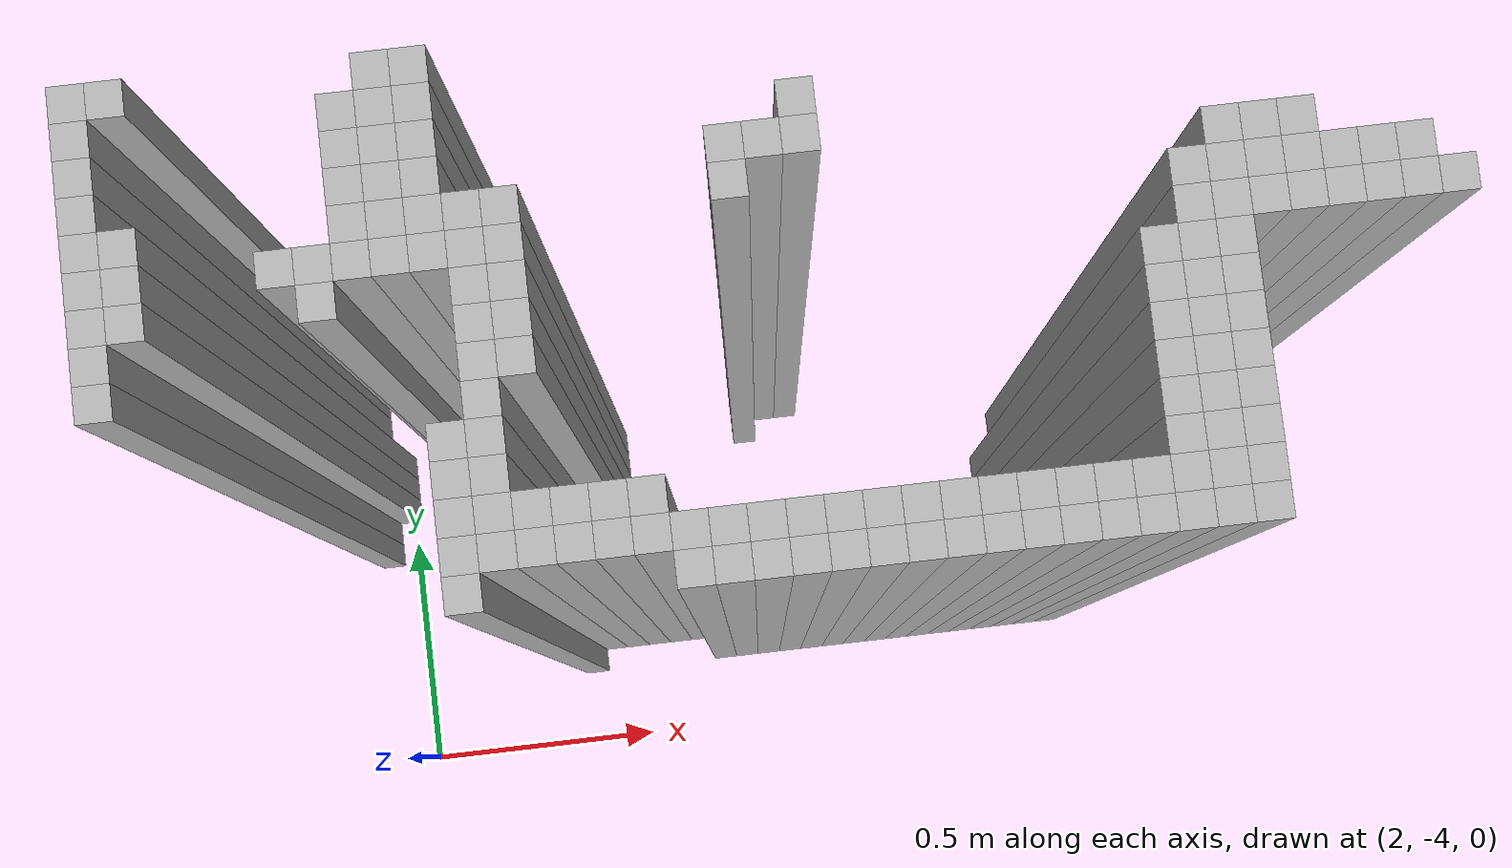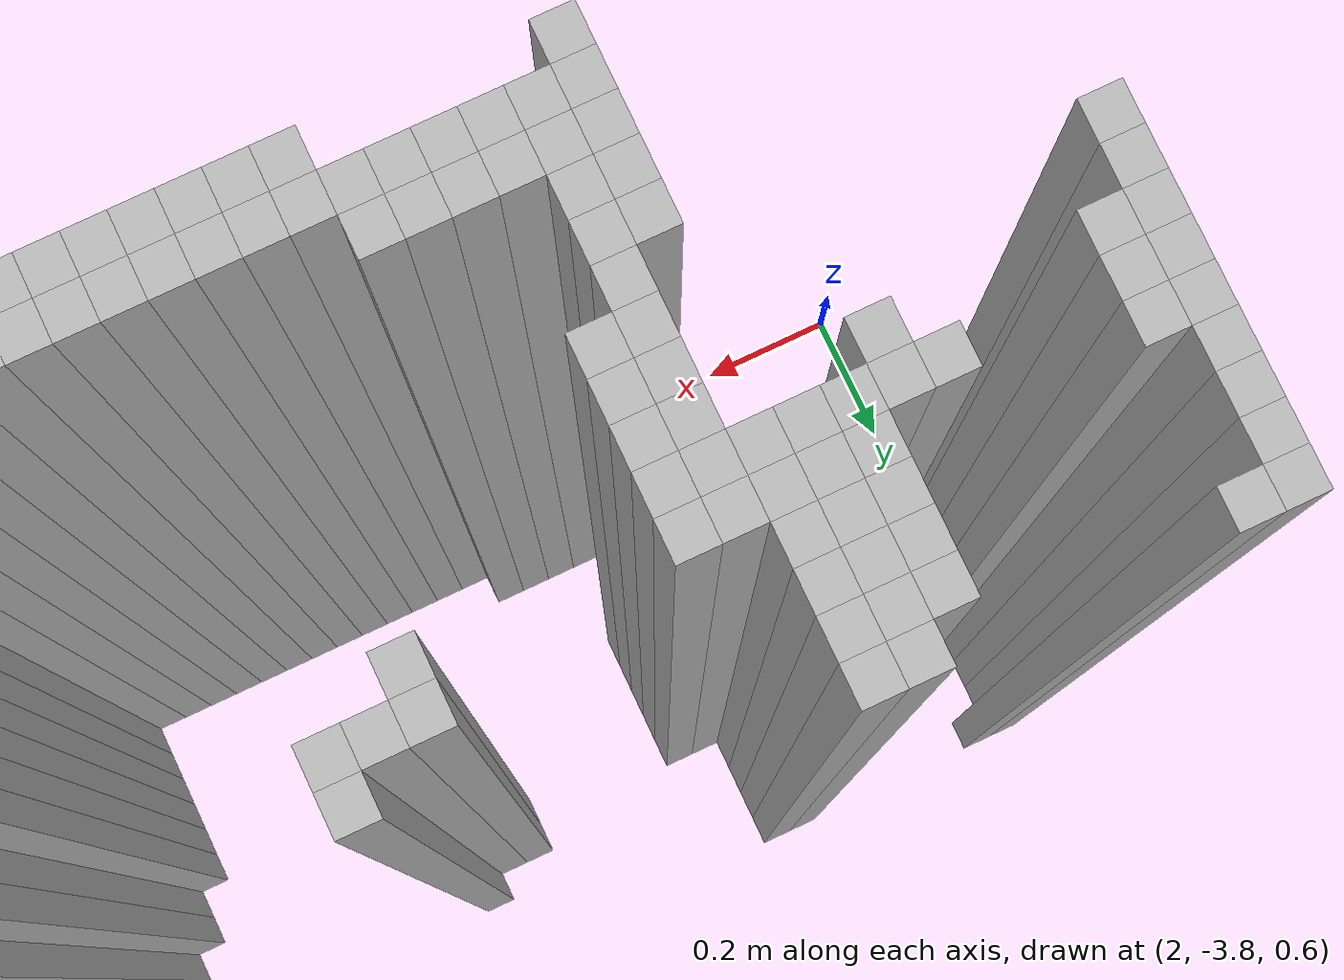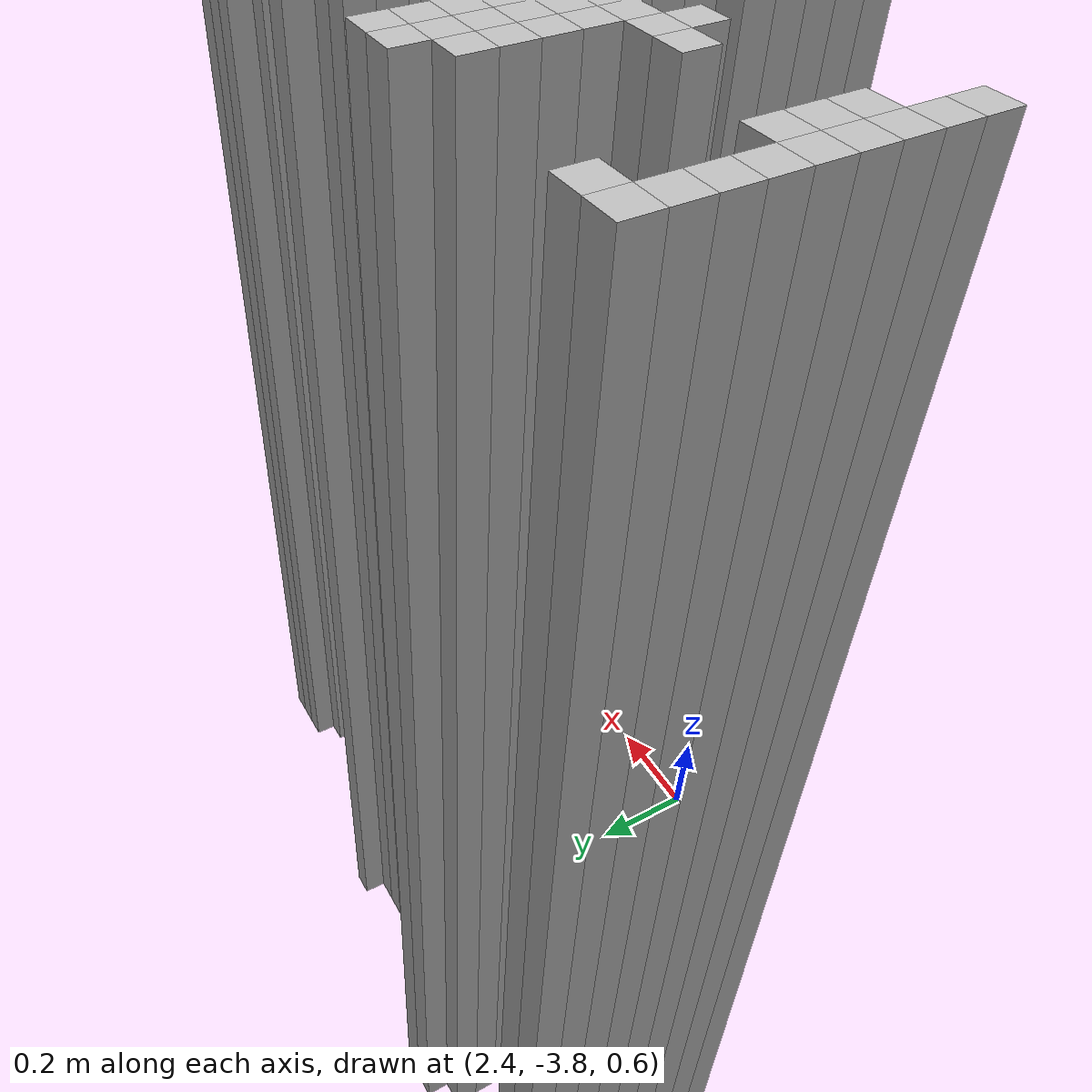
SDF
<sdf version="1.9">
 <world name="map_world">
  <model name="wall_262_216">
   <static>true</static>
   <pose>1.939 -3.120 1.250 0 0 0</pose>
   <link name="link">
    <collision name="collision"><geometry><box><size>0.050 0.050 2.500</size></box></geometry></collision>
    <visual name="visual"><geometry><box><size>0.050 0.050 2.500</size></box></geometry></visual>
   </link>
  </model>
  <model name="wall_263_216">
   <static>true</static>
   <pose>1.989 -3.120 1.250 0 0 0</pose>
   <link name="link">
    <collision name="collision"><geometry><box><size>0.050 0.050 2.500</size></box></geometry></collision>
    <visual name="visual"><geometry><box><size>0.050 0.050 2.500</size></box></geometry></visual>
   </link>
  </model>
  <model name="wall_270_216">
   <static>true</static>
   <pose>2.339 -3.120 1.250 0 0 0</pose>
   <link name="link">
    <collision name="collision"><geometry><box><size>0.050 0.050 2.500</size></box></geometry></collision>
    <visual name="visual"><geometry><box><size>0.050 0.050 2.500</size></box></geometry></visual>
   </link>
  </model>
  <model name="wall_271_216">
   <static>true</static>
   <pose>2.389 -3.120 1.250 0 0 0</pose>
   <link name="link">
    <collision name="collision"><geometry><box><size>0.050 0.050 2.500</size></box></geometry></collision>
    <visual name="visual"><geometry><box><size>0.050 0.050 2.500</size></box></geometry></visual>
   </link>
  </model>
  <model name="wall_262_217">
   <static>true</static>
   <pose>1.939 -3.170 1.250 0 0 0</pose>
   <link name="link">
    <collision name="collision"><geometry><box><size>0.050 0.050 2.500</size></box></geometry></collision>
    <visual name="visual"><geometry><box><size>0.050 0.050 2.500</size></box></geometry></visual>
   </link>
  </model>
  <model name="wall_269_217">
   <static>true</static>
   <pose>2.289 -3.170 1.250 0 0 0</pose>
   <link name="link">
    <collision name="collision"><geometry><box><size>0.050 0.050 2.500</size></box></geometry></collision>
    <visual name="visual"><geometry><box><size>0.050 0.050 2.500</size></box></geometry></visual>
   </link>
  </model>
  <model name="wall_270_217">
   <static>true</static>
   <pose>2.339 -3.170 1.250 0 0 0</pose>
   <link name="link">
    <collision name="collision"><geometry><box><size>0.050 0.050 2.500</size></box></geometry></collision>
    <visual name="visual"><geometry><box><size>0.050 0.050 2.500</size></box></geometry></visual>
   </link>
  </model>
  <model name="wall_271_217">
   <static>true</static>
   <pose>2.389 -3.170 1.250 0 0 0</pose>
   <link name="link">
    <collision name="collision"><geometry><box><size>0.050 0.050 2.500</size></box></geometry></collision>
    <visual name="visual"><geometry><box><size>0.050 0.050 2.500</size></box></geometry></visual>
   </link>
  </model>
  <model name="wall_262_218">
   <static>true</static>
   <pose>1.939 -3.220 1.250 0 0 0</pose>
   <link name="link">
    <collision name="collision"><geometry><box><size>0.050 0.050 2.500</size></box></geometry></collision>
    <visual name="visual"><geometry><box><size>0.050 0.050 2.500</size></box></geometry></visual>
   </link>
  </model>
  <model name="wall_269_218">
   <static>true</static>
   <pose>2.289 -3.220 1.250 0 0 0</pose>
   <link name="link">
    <collision name="collision"><geometry><box><size>0.050 0.050 2.500</size></box></geometry></collision>
    <visual name="visual"><geometry><box><size>0.050 0.050 2.500</size></box></geometry></visual>
   </link>
  </model>
  <model name="wall_270_218">
   <static>true</static>
   <pose>2.339 -3.220 1.250 0 0 0</pose>
   <link name="link">
    <collision name="collision"><geometry><box><size>0.050 0.050 2.500</size></box></geometry></collision>
    <visual name="visual"><geometry><box><size>0.050 0.050 2.500</size></box></geometry></visual>
   </link>
  </model>
  <model name="wall_271_218">
   <static>true</static>
   <pose>2.389 -3.220 1.250 0 0 0</pose>
   <link name="link">
    <collision name="collision"><geometry><box><size>0.050 0.050 2.500</size></box></geometry></collision>
    <visual name="visual"><geometry><box><size>0.050 0.050 2.500</size></box></geometry></visual>
   </link>
  </model>
  <model name="wall_281_218">
   <static>true</static>
   <pose>2.889 -3.220 1.250 0 0 0</pose>
   <link name="link">
    <collision name="collision"><geometry><box><size>0.050 0.050 2.500</size></box></geometry></collision>
    <visual name="visual"><geometry><box><size>0.050 0.050 2.500</size></box></geometry></visual>
   </link>
  </model>
  <model name="wall_262_219">
   <static>true</static>
   <pose>1.939 -3.270 1.250 0 0 0</pose>
   <link name="link">
    <collision name="collision"><geometry><box><size>0.050 0.050 2.500</size></box></geometry></collision>
    <visual name="visual"><geometry><box><size>0.050 0.050 2.500</size></box></geometry></visual>
   </link>
  </model>
  <model name="wall_269_219">
   <static>true</static>
   <pose>2.289 -3.270 1.250 0 0 0</pose>
   <link name="link">
    <collision name="collision"><geometry><box><size>0.050 0.050 2.500</size></box></geometry></collision>
    <visual name="visual"><geometry><box><size>0.050 0.050 2.500</size></box></geometry></visual>
   </link>
  </model>
  <model name="wall_270_219">
   <static>true</static>
   <pose>2.339 -3.270 1.250 0 0 0</pose>
   <link name="link">
    <collision name="collision"><geometry><box><size>0.050 0.050 2.500</size></box></geometry></collision>
    <visual name="visual"><geometry><box><size>0.050 0.050 2.500</size></box></geometry></visual>
   </link>
  </model>
  <model name="wall_271_219">
   <static>true</static>
   <pose>2.389 -3.270 1.250 0 0 0</pose>
   <link name="link">
    <collision name="collision"><geometry><box><size>0.050 0.050 2.500</size></box></geometry></collision>
    <visual name="visual"><geometry><box><size>0.050 0.050 2.500</size></box></geometry></visual>
   </link>
  </model>
  <model name="wall_279_219">
   <static>true</static>
   <pose>2.789 -3.270 1.250 0 0 0</pose>
   <link name="link">
    <collision name="collision"><geometry><box><size>0.050 0.050 2.500</size></box></geometry></collision>
    <visual name="visual"><geometry><box><size>0.050 0.050 2.500</size></box></geometry></visual>
   </link>
  </model>
  <model name="wall_280_219">
   <static>true</static>
   <pose>2.839 -3.270 1.250 0 0 0</pose>
   <link name="link">
    <collision name="collision"><geometry><box><size>0.050 0.050 2.500</size></box></geometry></collision>
    <visual name="visual"><geometry><box><size>0.050 0.050 2.500</size></box></geometry></visual>
   </link>
  </model>
  <model name="wall_281_219">
   <static>true</static>
   <pose>2.889 -3.270 1.250 0 0 0</pose>
   <link name="link">
    <collision name="collision"><geometry><box><size>0.050 0.050 2.500</size></box></geometry></collision>
    <visual name="visual"><geometry><box><size>0.050 0.050 2.500</size></box></geometry></visual>
   </link>
  </model>
  <model name="wall_262_220">
   <static>true</static>
   <pose>1.939 -3.320 1.250 0 0 0</pose>
   <link name="link">
    <collision name="collision"><geometry><box><size>0.050 0.050 2.500</size></box></geometry></collision>
    <visual name="visual"><geometry><box><size>0.050 0.050 2.500</size></box></geometry></visual>
   </link>
  </model>
  <model name="wall_263_220">
   <static>true</static>
   <pose>1.989 -3.320 1.250 0 0 0</pose>
   <link name="link">
    <collision name="collision"><geometry><box><size>0.050 0.050 2.500</size></box></geometry></collision>
    <visual name="visual"><geometry><box><size>0.050 0.050 2.500</size></box></geometry></visual>
   </link>
  </model>
  <model name="wall_269_220">
   <static>true</static>
   <pose>2.289 -3.320 1.250 0 0 0</pose>
   <link name="link">
    <collision name="collision"><geometry><box><size>0.050 0.050 2.500</size></box></geometry></collision>
    <visual name="visual"><geometry><box><size>0.050 0.050 2.500</size></box></geometry></visual>
   </link>
  </model>
  <model name="wall_270_220">
   <static>true</static>
   <pose>2.339 -3.320 1.250 0 0 0</pose>
   <link name="link">
    <collision name="collision"><geometry><box><size>0.050 0.050 2.500</size></box></geometry></collision>
    <visual name="visual"><geometry><box><size>0.050 0.050 2.500</size></box></geometry></visual>
   </link>
  </model>
  <model name="wall_271_220">
   <static>true</static>
   <pose>2.389 -3.320 1.250 0 0 0</pose>
   <link name="link">
    <collision name="collision"><geometry><box><size>0.050 0.050 2.500</size></box></geometry></collision>
    <visual name="visual"><geometry><box><size>0.050 0.050 2.500</size></box></geometry></visual>
   </link>
  </model>
  <model name="wall_272_220">
   <static>true</static>
   <pose>2.439 -3.320 1.250 0 0 0</pose>
   <link name="link">
    <collision name="collision"><geometry><box><size>0.050 0.050 2.500</size></box></geometry></collision>
    <visual name="visual"><geometry><box><size>0.050 0.050 2.500</size></box></geometry></visual>
   </link>
  </model>
  <model name="wall_273_220">
   <static>true</static>
   <pose>2.489 -3.320 1.250 0 0 0</pose>
   <link name="link">
    <collision name="collision"><geometry><box><size>0.050 0.050 2.500</size></box></geometry></collision>
    <visual name="visual"><geometry><box><size>0.050 0.050 2.500</size></box></geometry></visual>
   </link>
  </model>
  <model name="wall_279_220">
   <static>true</static>
   <pose>2.789 -3.320 1.250 0 0 0</pose>
   <link name="link">
    <collision name="collision"><geometry><box><size>0.050 0.050 2.500</size></box></geometry></collision>
    <visual name="visual"><geometry><box><size>0.050 0.050 2.500</size></box></geometry></visual>
   </link>
  </model>
  <model name="wall_292_220">
   <static>true</static>
   <pose>3.439 -3.320 1.250 0 0 0</pose>
   <link name="link">
    <collision name="collision"><geometry><box><size>0.050 0.050 2.500</size></box></geometry></collision>
    <visual name="visual"><geometry><box><size>0.050 0.050 2.500</size></box></geometry></visual>
   </link>
  </model>
  <model name="wall_293_220">
   <static>true</static>
   <pose>3.489 -3.320 1.250 0 0 0</pose>
   <link name="link">
    <collision name="collision"><geometry><box><size>0.050 0.050 2.500</size></box></geometry></collision>
    <visual name="visual"><geometry><box><size>0.050 0.050 2.500</size></box></geometry></visual>
   </link>
  </model>
  <model name="wall_294_220">
   <static>true</static>
   <pose>3.539 -3.320 1.250 0 0 0</pose>
   <link name="link">
    <collision name="collision"><geometry><box><size>0.050 0.050 2.500</size></box></geometry></collision>
    <visual name="visual"><geometry><box><size>0.050 0.050 2.500</size></box></geometry></visual>
   </link>
  </model>
  <model name="wall_262_221">
   <static>true</static>
   <pose>1.939 -3.370 1.250 0 0 0</pose>
   <link name="link">
    <collision name="collision"><geometry><box><size>0.050 0.050 2.500</size></box></geometry></collision>
    <visual name="visual"><geometry><box><size>0.050 0.050 2.500</size></box></geometry></visual>
   </link>
  </model>
  <model name="wall_263_221">
   <static>true</static>
   <pose>1.989 -3.370 1.250 0 0 0</pose>
   <link name="link">
    <collision name="collision"><geometry><box><size>0.050 0.050 2.500</size></box></geometry></collision>
    <visual name="visual"><geometry><box><size>0.050 0.050 2.500</size></box></geometry></visual>
   </link>
  </model>
  <model name="wall_267_221">
   <static>true</static>
   <pose>2.189 -3.370 1.250 0 0 0</pose>
   <link name="link">
    <collision name="collision"><geometry><box><size>0.050 0.050 2.500</size></box></geometry></collision>
    <visual name="visual"><geometry><box><size>0.050 0.050 2.500</size></box></geometry></visual>
   </link>
  </model>
  <model name="wall_268_221">
   <static>true</static>
   <pose>2.239 -3.370 1.250 0 0 0</pose>
   <link name="link">
    <collision name="collision"><geometry><box><size>0.050 0.050 2.500</size></box></geometry></collision>
    <visual name="visual"><geometry><box><size>0.050 0.050 2.500</size></box></geometry></visual>
   </link>
  </model>
  <model name="wall_269_221">
   <static>true</static>
   <pose>2.289 -3.370 1.250 0 0 0</pose>
   <link name="link">
    <collision name="collision"><geometry><box><size>0.050 0.050 2.500</size></box></geometry></collision>
    <visual name="visual"><geometry><box><size>0.050 0.050 2.500</size></box></geometry></visual>
   </link>
  </model>
  <model name="wall_270_221">
   <static>true</static>
   <pose>2.339 -3.370 1.250 0 0 0</pose>
   <link name="link">
    <collision name="collision"><geometry><box><size>0.050 0.050 2.500</size></box></geometry></collision>
    <visual name="visual"><geometry><box><size>0.050 0.050 2.500</size></box></geometry></visual>
   </link>
  </model>
  <model name="wall_271_221">
   <static>true</static>
   <pose>2.389 -3.370 1.250 0 0 0</pose>
   <link name="link">
    <collision name="collision"><geometry><box><size>0.050 0.050 2.500</size></box></geometry></collision>
    <visual name="visual"><geometry><box><size>0.050 0.050 2.500</size></box></geometry></visual>
   </link>
  </model>
  <model name="wall_272_221">
   <static>true</static>
   <pose>2.439 -3.370 1.250 0 0 0</pose>
   <link name="link">
    <collision name="collision"><geometry><box><size>0.050 0.050 2.500</size></box></geometry></collision>
    <visual name="visual"><geometry><box><size>0.050 0.050 2.500</size></box></geometry></visual>
   </link>
  </model>
  <model name="wall_273_221">
   <static>true</static>
   <pose>2.489 -3.370 1.250 0 0 0</pose>
   <link name="link">
    <collision name="collision"><geometry><box><size>0.050 0.050 2.500</size></box></geometry></collision>
    <visual name="visual"><geometry><box><size>0.050 0.050 2.500</size></box></geometry></visual>
   </link>
  </model>
  <model name="wall_291_221">
   <static>true</static>
   <pose>3.389 -3.370 1.250 0 0 0</pose>
   <link name="link">
    <collision name="collision"><geometry><box><size>0.050 0.050 2.500</size></box></geometry></collision>
    <visual name="visual"><geometry><box><size>0.050 0.050 2.500</size></box></geometry></visual>
   </link>
  </model>
  <model name="wall_292_221">
   <static>true</static>
   <pose>3.439 -3.370 1.250 0 0 0</pose>
   <link name="link">
    <collision name="collision"><geometry><box><size>0.050 0.050 2.500</size></box></geometry></collision>
    <visual name="visual"><geometry><box><size>0.050 0.050 2.500</size></box></geometry></visual>
   </link>
  </model>
  <model name="wall_293_221">
   <static>true</static>
   <pose>3.489 -3.370 1.250 0 0 0</pose>
   <link name="link">
    <collision name="collision"><geometry><box><size>0.050 0.050 2.500</size></box></geometry></collision>
    <visual name="visual"><geometry><box><size>0.050 0.050 2.500</size></box></geometry></visual>
   </link>
  </model>
  <model name="wall_294_221">
   <static>true</static>
   <pose>3.539 -3.370 1.250 0 0 0</pose>
   <link name="link">
    <collision name="collision"><geometry><box><size>0.050 0.050 2.500</size></box></geometry></collision>
    <visual name="visual"><geometry><box><size>0.050 0.050 2.500</size></box></geometry></visual>
   </link>
  </model>
  <model name="wall_295_221">
   <static>true</static>
   <pose>3.589 -3.370 1.250 0 0 0</pose>
   <link name="link">
    <collision name="collision"><geometry><box><size>0.050 0.050 2.500</size></box></geometry></collision>
    <visual name="visual"><geometry><box><size>0.050 0.050 2.500</size></box></geometry></visual>
   </link>
  </model>
  <model name="wall_296_221">
   <static>true</static>
   <pose>3.639 -3.370 1.250 0 0 0</pose>
   <link name="link">
    <collision name="collision"><geometry><box><size>0.050 0.050 2.500</size></box></geometry></collision>
    <visual name="visual"><geometry><box><size>0.050 0.050 2.500</size></box></geometry></visual>
   </link>
  </model>
  <model name="wall_297_221">
   <static>true</static>
   <pose>3.689 -3.370 1.250 0 0 0</pose>
   <link name="link">
    <collision name="collision"><geometry><box><size>0.050 0.050 2.500</size></box></geometry></collision>
    <visual name="visual"><geometry><box><size>0.050 0.050 2.500</size></box></geometry></visual>
   </link>
  </model>
  <model name="wall_262_222">
   <static>true</static>
   <pose>1.939 -3.420 1.250 0 0 0</pose>
   <link name="link">
    <collision name="collision"><geometry><box><size>0.050 0.050 2.500</size></box></geometry></collision>
    <visual name="visual"><geometry><box><size>0.050 0.050 2.500</size></box></geometry></visual>
   </link>
  </model>
  <model name="wall_263_222">
   <static>true</static>
   <pose>1.989 -3.420 1.250 0 0 0</pose>
   <link name="link">
    <collision name="collision"><geometry><box><size>0.050 0.050 2.500</size></box></geometry></collision>
    <visual name="visual"><geometry><box><size>0.050 0.050 2.500</size></box></geometry></visual>
   </link>
  </model>
  <model name="wall_268_222">
   <static>true</static>
   <pose>2.239 -3.420 1.250 0 0 0</pose>
   <link name="link">
    <collision name="collision"><geometry><box><size>0.050 0.050 2.500</size></box></geometry></collision>
    <visual name="visual"><geometry><box><size>0.050 0.050 2.500</size></box></geometry></visual>
   </link>
  </model>
  <model name="wall_272_222">
   <static>true</static>
   <pose>2.439 -3.420 1.250 0 0 0</pose>
   <link name="link">
    <collision name="collision"><geometry><box><size>0.050 0.050 2.500</size></box></geometry></collision>
    <visual name="visual"><geometry><box><size>0.050 0.050 2.500</size></box></geometry></visual>
   </link>
  </model>
  <model name="wall_273_222">
   <static>true</static>
   <pose>2.489 -3.420 1.250 0 0 0</pose>
   <link name="link">
    <collision name="collision"><geometry><box><size>0.050 0.050 2.500</size></box></geometry></collision>
    <visual name="visual"><geometry><box><size>0.050 0.050 2.500</size></box></geometry></visual>
   </link>
  </model>
  <model name="wall_291_222">
   <static>true</static>
   <pose>3.389 -3.420 1.250 0 0 0</pose>
   <link name="link">
    <collision name="collision"><geometry><box><size>0.050 0.050 2.500</size></box></geometry></collision>
    <visual name="visual"><geometry><box><size>0.050 0.050 2.500</size></box></geometry></visual>
   </link>
  </model>
  <model name="wall_292_222">
   <static>true</static>
   <pose>3.439 -3.420 1.250 0 0 0</pose>
   <link name="link">
    <collision name="collision"><geometry><box><size>0.050 0.050 2.500</size></box></geometry></collision>
    <visual name="visual"><geometry><box><size>0.050 0.050 2.500</size></box></geometry></visual>
   </link>
  </model>
  <model name="wall_293_222">
   <static>true</static>
   <pose>3.489 -3.420 1.250 0 0 0</pose>
   <link name="link">
    <collision name="collision"><geometry><box><size>0.050 0.050 2.500</size></box></geometry></collision>
    <visual name="visual"><geometry><box><size>0.050 0.050 2.500</size></box></geometry></visual>
   </link>
  </model>
  <model name="wall_294_222">
   <static>true</static>
   <pose>3.539 -3.420 1.250 0 0 0</pose>
   <link name="link">
    <collision name="collision"><geometry><box><size>0.050 0.050 2.500</size></box></geometry></collision>
    <visual name="visual"><geometry><box><size>0.050 0.050 2.500</size></box></geometry></visual>
   </link>
  </model>
  <model name="wall_295_222">
   <static>true</static>
   <pose>3.589 -3.420 1.250 0 0 0</pose>
   <link name="link">
    <collision name="collision"><geometry><box><size>0.050 0.050 2.500</size></box></geometry></collision>
    <visual name="visual"><geometry><box><size>0.050 0.050 2.500</size></box></geometry></visual>
   </link>
  </model>
  <model name="wall_296_222">
   <static>true</static>
   <pose>3.639 -3.420 1.250 0 0 0</pose>
   <link name="link">
    <collision name="collision"><geometry><box><size>0.050 0.050 2.500</size></box></geometry></collision>
    <visual name="visual"><geometry><box><size>0.050 0.050 2.500</size></box></geometry></visual>
   </link>
  </model>
  <model name="wall_297_222">
   <static>true</static>
   <pose>3.689 -3.420 1.250 0 0 0</pose>
   <link name="link">
    <collision name="collision"><geometry><box><size>0.050 0.050 2.500</size></box></geometry></collision>
    <visual name="visual"><geometry><box><size>0.050 0.050 2.500</size></box></geometry></visual>
   </link>
  </model>
  <model name="wall_298_222">
   <static>true</static>
   <pose>3.739 -3.420 1.250 0 0 0</pose>
   <link name="link">
    <collision name="collision"><geometry><box><size>0.050 0.050 2.500</size></box></geometry></collision>
    <visual name="visual"><geometry><box><size>0.050 0.050 2.500</size></box></geometry></visual>
   </link>
  </model>
  <model name="wall_262_223">
   <static>true</static>
   <pose>1.939 -3.470 1.250 0 0 0</pose>
   <link name="link">
    <collision name="collision"><geometry><box><size>0.050 0.050 2.500</size></box></geometry></collision>
    <visual name="visual"><geometry><box><size>0.050 0.050 2.500</size></box></geometry></visual>
   </link>
  </model>
  <model name="wall_272_223">
   <static>true</static>
   <pose>2.439 -3.470 1.250 0 0 0</pose>
   <link name="link">
    <collision name="collision"><geometry><box><size>0.050 0.050 2.500</size></box></geometry></collision>
    <visual name="visual"><geometry><box><size>0.050 0.050 2.500</size></box></geometry></visual>
   </link>
  </model>
  <model name="wall_273_223">
   <static>true</static>
   <pose>2.489 -3.470 1.250 0 0 0</pose>
   <link name="link">
    <collision name="collision"><geometry><box><size>0.050 0.050 2.500</size></box></geometry></collision>
    <visual name="visual"><geometry><box><size>0.050 0.050 2.500</size></box></geometry></visual>
   </link>
  </model>
  <model name="wall_290_223">
   <static>true</static>
   <pose>3.339 -3.470 1.250 0 0 0</pose>
   <link name="link">
    <collision name="collision"><geometry><box><size>0.050 0.050 2.500</size></box></geometry></collision>
    <visual name="visual"><geometry><box><size>0.050 0.050 2.500</size></box></geometry></visual>
   </link>
  </model>
  <model name="wall_291_223">
   <static>true</static>
   <pose>3.389 -3.470 1.250 0 0 0</pose>
   <link name="link">
    <collision name="collision"><geometry><box><size>0.050 0.050 2.500</size></box></geometry></collision>
    <visual name="visual"><geometry><box><size>0.050 0.050 2.500</size></box></geometry></visual>
   </link>
  </model>
  <model name="wall_292_223">
   <static>true</static>
   <pose>3.439 -3.470 1.250 0 0 0</pose>
   <link name="link">
    <collision name="collision"><geometry><box><size>0.050 0.050 2.500</size></box></geometry></collision>
    <visual name="visual"><geometry><box><size>0.050 0.050 2.500</size></box></geometry></visual>
   </link>
  </model>
  <model name="wall_262_224">
   <static>true</static>
   <pose>1.939 -3.520 1.250 0 0 0</pose>
   <link name="link">
    <collision name="collision"><geometry><box><size>0.050 0.050 2.500</size></box></geometry></collision>
    <visual name="visual"><geometry><box><size>0.050 0.050 2.500</size></box></geometry></visual>
   </link>
  </model>
  <model name="wall_272_224">
   <static>true</static>
   <pose>2.439 -3.520 1.250 0 0 0</pose>
   <link name="link">
    <collision name="collision"><geometry><box><size>0.050 0.050 2.500</size></box></geometry></collision>
    <visual name="visual"><geometry><box><size>0.050 0.050 2.500</size></box></geometry></visual>
   </link>
  </model>
  <model name="wall_273_224">
   <static>true</static>
   <pose>2.489 -3.520 1.250 0 0 0</pose>
   <link name="link">
    <collision name="collision"><geometry><box><size>0.050 0.050 2.500</size></box></geometry></collision>
    <visual name="visual"><geometry><box><size>0.050 0.050 2.500</size></box></geometry></visual>
   </link>
  </model>
  <model name="wall_290_224">
   <static>true</static>
   <pose>3.339 -3.520 1.250 0 0 0</pose>
   <link name="link">
    <collision name="collision"><geometry><box><size>0.050 0.050 2.500</size></box></geometry></collision>
    <visual name="visual"><geometry><box><size>0.050 0.050 2.500</size></box></geometry></visual>
   </link>
  </model>
  <model name="wall_291_224">
   <static>true</static>
   <pose>3.389 -3.520 1.250 0 0 0</pose>
   <link name="link">
    <collision name="collision"><geometry><box><size>0.050 0.050 2.500</size></box></geometry></collision>
    <visual name="visual"><geometry><box><size>0.050 0.050 2.500</size></box></geometry></visual>
   </link>
  </model>
  <model name="wall_292_224">
   <static>true</static>
   <pose>3.439 -3.520 1.250 0 0 0</pose>
   <link name="link">
    <collision name="collision"><geometry><box><size>0.050 0.050 2.500</size></box></geometry></collision>
    <visual name="visual"><geometry><box><size>0.050 0.050 2.500</size></box></geometry></visual>
   </link>
  </model>
  <model name="wall_272_225">
   <static>true</static>
   <pose>2.439 -3.570 1.250 0 0 0</pose>
   <link name="link">
    <collision name="collision"><geometry><box><size>0.050 0.050 2.500</size></box></geometry></collision>
    <visual name="visual"><geometry><box><size>0.050 0.050 2.500</size></box></geometry></visual>
   </link>
  </model>
  <model name="wall_290_225">
   <static>true</static>
   <pose>3.339 -3.570 1.250 0 0 0</pose>
   <link name="link">
    <collision name="collision"><geometry><box><size>0.050 0.050 2.500</size></box></geometry></collision>
    <visual name="visual"><geometry><box><size>0.050 0.050 2.500</size></box></geometry></visual>
   </link>
  </model>
  <model name="wall_291_225">
   <static>true</static>
   <pose>3.389 -3.570 1.250 0 0 0</pose>
   <link name="link">
    <collision name="collision"><geometry><box><size>0.050 0.050 2.500</size></box></geometry></collision>
    <visual name="visual"><geometry><box><size>0.050 0.050 2.500</size></box></geometry></visual>
   </link>
  </model>
  <model name="wall_292_225">
   <static>true</static>
   <pose>3.439 -3.570 1.250 0 0 0</pose>
   <link name="link">
    <collision name="collision"><geometry><box><size>0.050 0.050 2.500</size></box></geometry></collision>
    <visual name="visual"><geometry><box><size>0.050 0.050 2.500</size></box></geometry></visual>
   </link>
  </model>
  <model name="wall_271_226">
   <static>true</static>
   <pose>2.389 -3.620 1.250 0 0 0</pose>
   <link name="link">
    <collision name="collision"><geometry><box><size>0.050 0.050 2.500</size></box></geometry></collision>
    <visual name="visual"><geometry><box><size>0.050 0.050 2.500</size></box></geometry></visual>
   </link>
  </model>
  <model name="wall_272_226">
   <static>true</static>
   <pose>2.439 -3.620 1.250 0 0 0</pose>
   <link name="link">
    <collision name="collision"><geometry><box><size>0.050 0.050 2.500</size></box></geometry></collision>
    <visual name="visual"><geometry><box><size>0.050 0.050 2.500</size></box></geometry></visual>
   </link>
  </model>
  <model name="wall_290_226">
   <static>true</static>
   <pose>3.339 -3.620 1.250 0 0 0</pose>
   <link name="link">
    <collision name="collision"><geometry><box><size>0.050 0.050 2.500</size></box></geometry></collision>
    <visual name="visual"><geometry><box><size>0.050 0.050 2.500</size></box></geometry></visual>
   </link>
  </model>
  <model name="wall_291_226">
   <static>true</static>
   <pose>3.389 -3.620 1.250 0 0 0</pose>
   <link name="link">
    <collision name="collision"><geometry><box><size>0.050 0.050 2.500</size></box></geometry></collision>
    <visual name="visual"><geometry><box><size>0.050 0.050 2.500</size></box></geometry></visual>
   </link>
  </model>
  <model name="wall_292_226">
   <static>true</static>
   <pose>3.439 -3.620 1.250 0 0 0</pose>
   <link name="link">
    <collision name="collision"><geometry><box><size>0.050 0.050 2.500</size></box></geometry></collision>
    <visual name="visual"><geometry><box><size>0.050 0.050 2.500</size></box></geometry></visual>
   </link>
  </model>
  <model name="wall_271_227">
   <static>true</static>
   <pose>2.389 -3.670 1.250 0 0 0</pose>
   <link name="link">
    <collision name="collision"><geometry><box><size>0.050 0.050 2.500</size></box></geometry></collision>
    <visual name="visual"><geometry><box><size>0.050 0.050 2.500</size></box></geometry></visual>
   </link>
  </model>
  <model name="wall_272_227">
   <static>true</static>
   <pose>2.439 -3.670 1.250 0 0 0</pose>
   <link name="link">
    <collision name="collision"><geometry><box><size>0.050 0.050 2.500</size></box></geometry></collision>
    <visual name="visual"><geometry><box><size>0.050 0.050 2.500</size></box></geometry></visual>
   </link>
  </model>
  <model name="wall_290_227">
   <static>true</static>
   <pose>3.339 -3.670 1.250 0 0 0</pose>
   <link name="link">
    <collision name="collision"><geometry><box><size>0.050 0.050 2.500</size></box></geometry></collision>
    <visual name="visual"><geometry><box><size>0.050 0.050 2.500</size></box></geometry></visual>
   </link>
  </model>
  <model name="wall_291_227">
   <static>true</static>
   <pose>3.389 -3.670 1.250 0 0 0</pose>
   <link name="link">
    <collision name="collision"><geometry><box><size>0.050 0.050 2.500</size></box></geometry></collision>
    <visual name="visual"><geometry><box><size>0.050 0.050 2.500</size></box></geometry></visual>
   </link>
  </model>
  <model name="wall_292_227">
   <static>true</static>
   <pose>3.439 -3.670 1.250 0 0 0</pose>
   <link name="link">
    <collision name="collision"><geometry><box><size>0.050 0.050 2.500</size></box></geometry></collision>
    <visual name="visual"><geometry><box><size>0.050 0.050 2.500</size></box></geometry></visual>
   </link>
  </model>
  <model name="wall_271_228">
   <static>true</static>
   <pose>2.389 -3.720 1.250 0 0 0</pose>
   <link name="link">
    <collision name="collision"><geometry><box><size>0.050 0.050 2.500</size></box></geometry></collision>
    <visual name="visual"><geometry><box><size>0.050 0.050 2.500</size></box></geometry></visual>
   </link>
  </model>
  <model name="wall_272_228">
   <static>true</static>
   <pose>2.439 -3.720 1.250 0 0 0</pose>
   <link name="link">
    <collision name="collision"><geometry><box><size>0.050 0.050 2.500</size></box></geometry></collision>
    <visual name="visual"><geometry><box><size>0.050 0.050 2.500</size></box></geometry></visual>
   </link>
  </model>
  <model name="wall_273_228">
   <static>true</static>
   <pose>2.489 -3.720 1.250 0 0 0</pose>
   <link name="link">
    <collision name="collision"><geometry><box><size>0.050 0.050 2.500</size></box></geometry></collision>
    <visual name="visual"><geometry><box><size>0.050 0.050 2.500</size></box></geometry></visual>
   </link>
  </model>
  <model name="wall_274_228">
   <static>true</static>
   <pose>2.539 -3.720 1.250 0 0 0</pose>
   <link name="link">
    <collision name="collision"><geometry><box><size>0.050 0.050 2.500</size></box></geometry></collision>
    <visual name="visual"><geometry><box><size>0.050 0.050 2.500</size></box></geometry></visual>
   </link>
  </model>
  <model name="wall_275_228">
   <static>true</static>
   <pose>2.589 -3.720 1.250 0 0 0</pose>
   <link name="link">
    <collision name="collision"><geometry><box><size>0.050 0.050 2.500</size></box></geometry></collision>
    <visual name="visual"><geometry><box><size>0.050 0.050 2.500</size></box></geometry></visual>
   </link>
  </model>
  <model name="wall_276_228">
   <static>true</static>
   <pose>2.639 -3.720 1.250 0 0 0</pose>
   <link name="link">
    <collision name="collision"><geometry><box><size>0.050 0.050 2.500</size></box></geometry></collision>
    <visual name="visual"><geometry><box><size>0.050 0.050 2.500</size></box></geometry></visual>
   </link>
  </model>
  <model name="wall_290_228">
   <static>true</static>
   <pose>3.339 -3.720 1.250 0 0 0</pose>
   <link name="link">
    <collision name="collision"><geometry><box><size>0.050 0.050 2.500</size></box></geometry></collision>
    <visual name="visual"><geometry><box><size>0.050 0.050 2.500</size></box></geometry></visual>
   </link>
  </model>
  <model name="wall_291_228">
   <static>true</static>
   <pose>3.389 -3.720 1.250 0 0 0</pose>
   <link name="link">
    <collision name="collision"><geometry><box><size>0.050 0.050 2.500</size></box></geometry></collision>
    <visual name="visual"><geometry><box><size>0.050 0.050 2.500</size></box></geometry></visual>
   </link>
  </model>
  <model name="wall_292_228">
   <static>true</static>
   <pose>3.439 -3.720 1.250 0 0 0</pose>
   <link name="link">
    <collision name="collision"><geometry><box><size>0.050 0.050 2.500</size></box></geometry></collision>
    <visual name="visual"><geometry><box><size>0.050 0.050 2.500</size></box></geometry></visual>
   </link>
  </model>
  <model name="wall_271_229">
   <static>true</static>
   <pose>2.389 -3.770 1.250 0 0 0</pose>
   <link name="link">
    <collision name="collision"><geometry><box><size>0.050 0.050 2.500</size></box></geometry></collision>
    <visual name="visual"><geometry><box><size>0.050 0.050 2.500</size></box></geometry></visual>
   </link>
  </model>
  <model name="wall_272_229">
   <static>true</static>
   <pose>2.439 -3.770 1.250 0 0 0</pose>
   <link name="link">
    <collision name="collision"><geometry><box><size>0.050 0.050 2.500</size></box></geometry></collision>
    <visual name="visual"><geometry><box><size>0.050 0.050 2.500</size></box></geometry></visual>
   </link>
  </model>
  <model name="wall_273_229">
   <static>true</static>
   <pose>2.489 -3.770 1.250 0 0 0</pose>
   <link name="link">
    <collision name="collision"><geometry><box><size>0.050 0.050 2.500</size></box></geometry></collision>
    <visual name="visual"><geometry><box><size>0.050 0.050 2.500</size></box></geometry></visual>
   </link>
  </model>
  <model name="wall_274_229">
   <static>true</static>
   <pose>2.539 -3.770 1.250 0 0 0</pose>
   <link name="link">
    <collision name="collision"><geometry><box><size>0.050 0.050 2.500</size></box></geometry></collision>
    <visual name="visual"><geometry><box><size>0.050 0.050 2.500</size></box></geometry></visual>
   </link>
  </model>
  <model name="wall_275_229">
   <static>true</static>
   <pose>2.589 -3.770 1.250 0 0 0</pose>
   <link name="link">
    <collision name="collision"><geometry><box><size>0.050 0.050 2.500</size></box></geometry></collision>
    <visual name="visual"><geometry><box><size>0.050 0.050 2.500</size></box></geometry></visual>
   </link>
  </model>
  <model name="wall_276_229">
   <static>true</static>
   <pose>2.639 -3.770 1.250 0 0 0</pose>
   <link name="link">
    <collision name="collision"><geometry><box><size>0.050 0.050 2.500</size></box></geometry></collision>
    <visual name="visual"><geometry><box><size>0.050 0.050 2.500</size></box></geometry></visual>
   </link>
  </model>
  <model name="wall_277_229">
   <static>true</static>
   <pose>2.689 -3.770 1.250 0 0 0</pose>
   <link name="link">
    <collision name="collision"><geometry><box><size>0.050 0.050 2.500</size></box></geometry></collision>
    <visual name="visual"><geometry><box><size>0.050 0.050 2.500</size></box></geometry></visual>
   </link>
  </model>
  <model name="wall_278_229">
   <static>true</static>
   <pose>2.739 -3.770 1.250 0 0 0</pose>
   <link name="link">
    <collision name="collision"><geometry><box><size>0.050 0.050 2.500</size></box></geometry></collision>
    <visual name="visual"><geometry><box><size>0.050 0.050 2.500</size></box></geometry></visual>
   </link>
  </model>
  <model name="wall_279_229">
   <static>true</static>
   <pose>2.789 -3.770 1.250 0 0 0</pose>
   <link name="link">
    <collision name="collision"><geometry><box><size>0.050 0.050 2.500</size></box></geometry></collision>
    <visual name="visual"><geometry><box><size>0.050 0.050 2.500</size></box></geometry></visual>
   </link>
  </model>
  <model name="wall_280_229">
   <static>true</static>
   <pose>2.839 -3.770 1.250 0 0 0</pose>
   <link name="link">
    <collision name="collision"><geometry><box><size>0.050 0.050 2.500</size></box></geometry></collision>
    <visual name="visual"><geometry><box><size>0.050 0.050 2.500</size></box></geometry></visual>
   </link>
  </model>
  <model name="wall_281_229">
   <static>true</static>
   <pose>2.889 -3.770 1.250 0 0 0</pose>
   <link name="link">
    <collision name="collision"><geometry><box><size>0.050 0.050 2.500</size></box></geometry></collision>
    <visual name="visual"><geometry><box><size>0.050 0.050 2.500</size></box></geometry></visual>
   </link>
  </model>
  <model name="wall_282_229">
   <static>true</static>
   <pose>2.939 -3.770 1.250 0 0 0</pose>
   <link name="link">
    <collision name="collision"><geometry><box><size>0.050 0.050 2.500</size></box></geometry></collision>
    <visual name="visual"><geometry><box><size>0.050 0.050 2.500</size></box></geometry></visual>
   </link>
  </model>
  <model name="wall_283_229">
   <static>true</static>
   <pose>2.989 -3.770 1.250 0 0 0</pose>
   <link name="link">
    <collision name="collision"><geometry><box><size>0.050 0.050 2.500</size></box></geometry></collision>
    <visual name="visual"><geometry><box><size>0.050 0.050 2.500</size></box></geometry></visual>
   </link>
  </model>
  <model name="wall_284_229">
   <static>true</static>
   <pose>3.039 -3.770 1.250 0 0 0</pose>
   <link name="link">
    <collision name="collision"><geometry><box><size>0.050 0.050 2.500</size></box></geometry></collision>
    <visual name="visual"><geometry><box><size>0.050 0.050 2.500</size></box></geometry></visual>
   </link>
  </model>
  <model name="wall_285_229">
   <static>true</static>
   <pose>3.089 -3.770 1.250 0 0 0</pose>
   <link name="link">
    <collision name="collision"><geometry><box><size>0.050 0.050 2.500</size></box></geometry></collision>
    <visual name="visual"><geometry><box><size>0.050 0.050 2.500</size></box></geometry></visual>
   </link>
  </model>
  <model name="wall_286_229">
   <static>true</static>
   <pose>3.139 -3.770 1.250 0 0 0</pose>
   <link name="link">
    <collision name="collision"><geometry><box><size>0.050 0.050 2.500</size></box></geometry></collision>
    <visual name="visual"><geometry><box><size>0.050 0.050 2.500</size></box></geometry></visual>
   </link>
  </model>
  <model name="wall_287_229">
   <static>true</static>
   <pose>3.189 -3.770 1.250 0 0 0</pose>
   <link name="link">
    <collision name="collision"><geometry><box><size>0.050 0.050 2.500</size></box></geometry></collision>
    <visual name="visual"><geometry><box><size>0.050 0.050 2.500</size></box></geometry></visual>
   </link>
  </model>
  <model name="wall_288_229">
   <static>true</static>
   <pose>3.239 -3.770 1.250 0 0 0</pose>
   <link name="link">
    <collision name="collision"><geometry><box><size>0.050 0.050 2.500</size></box></geometry></collision>
    <visual name="visual"><geometry><box><size>0.050 0.050 2.500</size></box></geometry></visual>
   </link>
  </model>
  <model name="wall_289_229">
   <static>true</static>
   <pose>3.289 -3.770 1.250 0 0 0</pose>
   <link name="link">
    <collision name="collision"><geometry><box><size>0.050 0.050 2.500</size></box></geometry></collision>
    <visual name="visual"><geometry><box><size>0.050 0.050 2.500</size></box></geometry></visual>
   </link>
  </model>
  <model name="wall_290_229">
   <static>true</static>
   <pose>3.339 -3.770 1.250 0 0 0</pose>
   <link name="link">
    <collision name="collision"><geometry><box><size>0.050 0.050 2.500</size></box></geometry></collision>
    <visual name="visual"><geometry><box><size>0.050 0.050 2.500</size></box></geometry></visual>
   </link>
  </model>
  <model name="wall_291_229">
   <static>true</static>
   <pose>3.389 -3.770 1.250 0 0 0</pose>
   <link name="link">
    <collision name="collision"><geometry><box><size>0.050 0.050 2.500</size></box></geometry></collision>
    <visual name="visual"><geometry><box><size>0.050 0.050 2.500</size></box></geometry></visual>
   </link>
  </model>
  <model name="wall_292_229">
   <static>true</static>
   <pose>3.439 -3.770 1.250 0 0 0</pose>
   <link name="link">
    <collision name="collision"><geometry><box><size>0.050 0.050 2.500</size></box></geometry></collision>
    <visual name="visual"><geometry><box><size>0.050 0.050 2.500</size></box></geometry></visual>
   </link>
  </model>
  <model name="wall_271_230">
   <static>true</static>
   <pose>2.389 -3.820 1.250 0 0 0</pose>
   <link name="link">
    <collision name="collision"><geometry><box><size>0.050 0.050 2.500</size></box></geometry></collision>
    <visual name="visual"><geometry><box><size>0.050 0.050 2.500</size></box></geometry></visual>
   </link>
  </model>
  <model name="wall_277_230">
   <static>true</static>
   <pose>2.689 -3.820 1.250 0 0 0</pose>
   <link name="link">
    <collision name="collision"><geometry><box><size>0.050 0.050 2.500</size></box></geometry></collision>
    <visual name="visual"><geometry><box><size>0.050 0.050 2.500</size></box></geometry></visual>
   </link>
  </model>
  <model name="wall_278_230">
   <static>true</static>
   <pose>2.739 -3.820 1.250 0 0 0</pose>
   <link name="link">
    <collision name="collision"><geometry><box><size>0.050 0.050 2.500</size></box></geometry></collision>
    <visual name="visual"><geometry><box><size>0.050 0.050 2.500</size></box></geometry></visual>
   </link>
  </model>
  <model name="wall_279_230">
   <static>true</static>
   <pose>2.789 -3.820 1.250 0 0 0</pose>
   <link name="link">
    <collision name="collision"><geometry><box><size>0.050 0.050 2.500</size></box></geometry></collision>
    <visual name="visual"><geometry><box><size>0.050 0.050 2.500</size></box></geometry></visual>
   </link>
  </model>
  <model name="wall_280_230">
   <static>true</static>
   <pose>2.839 -3.820 1.250 0 0 0</pose>
   <link name="link">
    <collision name="collision"><geometry><box><size>0.050 0.050 2.500</size></box></geometry></collision>
    <visual name="visual"><geometry><box><size>0.050 0.050 2.500</size></box></geometry></visual>
   </link>
  </model>
  <model name="wall_281_230">
   <static>true</static>
   <pose>2.889 -3.820 1.250 0 0 0</pose>
   <link name="link">
    <collision name="collision"><geometry><box><size>0.050 0.050 2.500</size></box></geometry></collision>
    <visual name="visual"><geometry><box><size>0.050 0.050 2.500</size></box></geometry></visual>
   </link>
  </model>
  <model name="wall_282_230">
   <static>true</static>
   <pose>2.939 -3.820 1.250 0 0 0</pose>
   <link name="link">
    <collision name="collision"><geometry><box><size>0.050 0.050 2.500</size></box></geometry></collision>
    <visual name="visual"><geometry><box><size>0.050 0.050 2.500</size></box></geometry></visual>
   </link>
  </model>
  <model name="wall_283_230">
   <static>true</static>
   <pose>2.989 -3.820 1.250 0 0 0</pose>
   <link name="link">
    <collision name="collision"><geometry><box><size>0.050 0.050 2.500</size></box></geometry></collision>
    <visual name="visual"><geometry><box><size>0.050 0.050 2.500</size></box></geometry></visual>
   </link>
  </model>
  <model name="wall_284_230">
   <static>true</static>
   <pose>3.039 -3.820 1.250 0 0 0</pose>
   <link name="link">
    <collision name="collision"><geometry><box><size>0.050 0.050 2.500</size></box></geometry></collision>
    <visual name="visual"><geometry><box><size>0.050 0.050 2.500</size></box></geometry></visual>
   </link>
  </model>
  <model name="wall_285_230">
   <static>true</static>
   <pose>3.089 -3.820 1.250 0 0 0</pose>
   <link name="link">
    <collision name="collision"><geometry><box><size>0.050 0.050 2.500</size></box></geometry></collision>
    <visual name="visual"><geometry><box><size>0.050 0.050 2.500</size></box></geometry></visual>
   </link>
  </model>
  <model name="wall_286_230">
   <static>true</static>
   <pose>3.139 -3.820 1.250 0 0 0</pose>
   <link name="link">
    <collision name="collision"><geometry><box><size>0.050 0.050 2.500</size></box></geometry></collision>
    <visual name="visual"><geometry><box><size>0.050 0.050 2.500</size></box></geometry></visual>
   </link>
  </model>
  <model name="wall_287_230">
   <static>true</static>
   <pose>3.189 -3.820 1.250 0 0 0</pose>
   <link name="link">
    <collision name="collision"><geometry><box><size>0.050 0.050 2.500</size></box></geometry></collision>
    <visual name="visual"><geometry><box><size>0.050 0.050 2.500</size></box></geometry></visual>
   </link>
  </model>
  <model name="wall_288_230">
   <static>true</static>
   <pose>3.239 -3.820 1.250 0 0 0</pose>
   <link name="link">
    <collision name="collision"><geometry><box><size>0.050 0.050 2.500</size></box></geometry></collision>
    <visual name="visual"><geometry><box><size>0.050 0.050 2.500</size></box></geometry></visual>
   </link>
  </model>
  <model name="wall_289_230">
   <static>true</static>
   <pose>3.289 -3.820 1.250 0 0 0</pose>
   <link name="link">
    <collision name="collision"><geometry><box><size>0.050 0.050 2.500</size></box></geometry></collision>
    <visual name="visual"><geometry><box><size>0.050 0.050 2.500</size></box></geometry></visual>
   </link>
  </model>
  <model name="wall_290_230">
   <static>true</static>
   <pose>3.339 -3.820 1.250 0 0 0</pose>
   <link name="link">
    <collision name="collision"><geometry><box><size>0.050 0.050 2.500</size></box></geometry></collision>
    <visual name="visual"><geometry><box><size>0.050 0.050 2.500</size></box></geometry></visual>
   </link>
  </model>
  <model name="wall_291_230">
   <static>true</static>
   <pose>3.389 -3.820 1.250 0 0 0</pose>
   <link name="link">
    <collision name="collision"><geometry><box><size>0.050 0.050 2.500</size></box></geometry></collision>
    <visual name="visual"><geometry><box><size>0.050 0.050 2.500</size></box></geometry></visual>
   </link>
  </model>
  <model name="wall_292_230">
   <static>true</static>
   <pose>3.439 -3.820 1.250 0 0 0</pose>
   <link name="link">
    <collision name="collision"><geometry><box><size>0.050 0.050 2.500</size></box></geometry></collision>
    <visual name="visual"><geometry><box><size>0.050 0.050 2.500</size></box></geometry></visual>
   </link>
  </model>
 </world>
</sdf>
